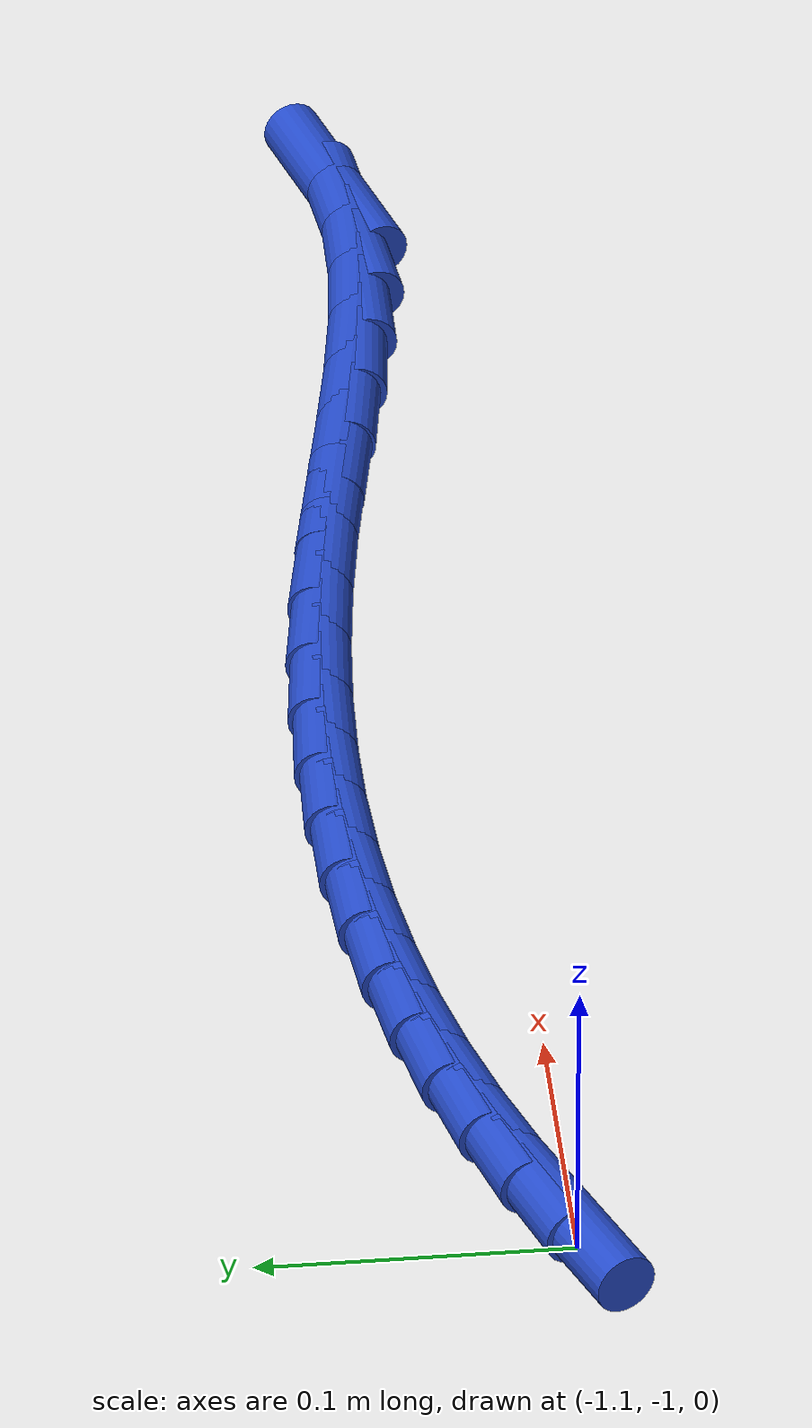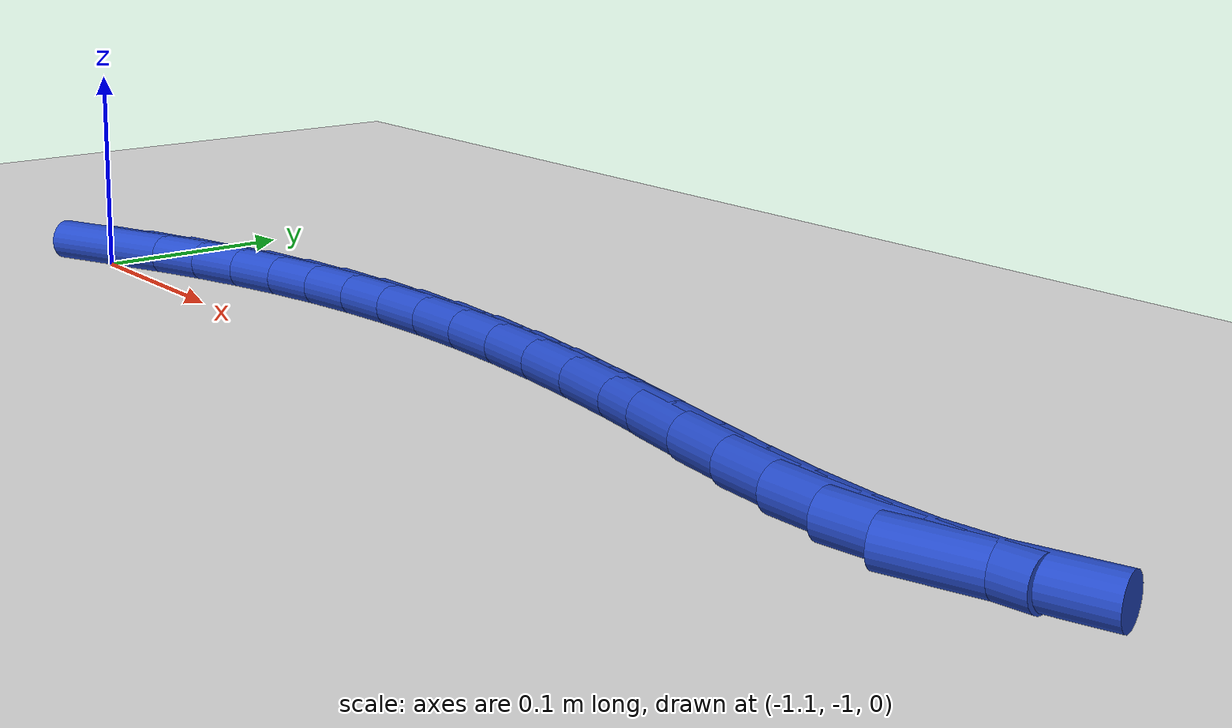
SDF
<sdf version="1.6">
 <world name="default">
  <model name="ground_plane">
   <static>1</static>
   <link name="link">
    <collision name="collision">
     <geometry><plane><normal>0 0 1</normal><size>100 100</size></plane></geometry>
     <surface><friction><ode><mu>100</mu><mu2>50</mu2></ode></friction></surface>
    </collision>
    <visual name="visual">
     <cast_shadows>0</cast_shadows>
     <geometry><plane><normal>0 0 1</normal><size>100 100</size></plane></geometry>
     <material>
      <script><uri>file://media/materials/scripts/gazebo.material</uri><name>Gazebo/WhiteGlow</name></script>
     </material>
    </visual>
   </link>
  </model>
  <model name="line">
   <link name="link_187">
    <pose>-1.0937528025233856 -0.9957720175721984 0.01 0 1.57 0.41378701808105184</pose>
    <collision name="collision">
     <geometry><cylinder><radius>0.01</radius><length>0.08</length></cylinder></geometry>
    </collision>
    <visual name="visual">
     <material>
      <script><name>Gazebo/Blue</name><uri>file://media/materials/scripts/gazebo.material</uri></script>
     </material>
     <geometry><cylinder><radius>0.01</radius><length>0.08</length></cylinder></geometry>
    </visual>
   </link>
   <link name="link_188">
    <pose>-1.0685561320614867 -0.984707125219084 0.01 0 1.57 0.3644209718391315</pose>
    <collision name="collision">
     <geometry><cylinder><radius>0.01</radius><length>0.08</length></cylinder></geometry>
    </collision>
    <visual name="visual">
     <material>
      <script><name>Gazebo/Blue</name><uri>file://media/materials/scripts/gazebo.material</uri></script>
     </material>
     <geometry><cylinder><radius>0.01</radius><length>0.08</length></cylinder></geometry>
    </visual>
   </link>
   <link name="link_189">
    <pose>-1.043203016008292 -0.9750359603308435 0.01 0 1.57 0.31395970144959207</pose>
    <collision name="collision">
     <geometry><cylinder><radius>0.01</radius><length>0.08</length></cylinder></geometry>
    </collision>
    <visual name="visual">
     <material>
      <script><name>Gazebo/Blue</name><uri>file://media/materials/scripts/gazebo.material</uri></script>
     </material>
     <geometry><cylinder><radius>0.01</radius><length>0.08</length></cylinder></geometry>
    </visual>
   </link>
   <link name="link_190">
    <pose>-1.017651222967959 -0.9667393166867566 0.01 0 1.57 0.2628913308552838</pose>
    <collision name="collision">
     <geometry><cylinder><radius>0.01</radius><length>0.08</length></cylinder></geometry>
    </collision>
    <visual name="visual">
     <material>
      <script><name>Gazebo/Blue</name><uri>file://media/materials/scripts/gazebo.material</uri></script>
     </material>
     <geometry><cylinder><radius>0.01</radius><length>0.08</length></cylinder></geometry>
    </visual>
   </link>
   <link name="link_191">
    <pose>-0.9918585215446478 -0.9597979880661045 0.01 0 1.57 0.21173635055647214</pose>
    <collision name="collision">
     <geometry><cylinder><radius>0.01</radius><length>0.08</length></cylinder></geometry>
    </collision>
    <visual name="visual">
     <material>
      <script><name>Gazebo/Blue</name><uri>file://media/materials/scripts/gazebo.material</uri></script>
     </material>
     <geometry><cylinder><radius>0.01</radius><length>0.08</length></cylinder></geometry>
    </visual>
   </link>
   <link name="link_192">
    <pose>-0.9657826803425159 -0.9541927682481668 0.01 0 1.57 0.16102253518012138</pose>
    <collision name="collision">
     <geometry><cylinder><radius>0.01</radius><length>0.08</length></cylinder></geometry>
    </collision>
    <visual name="visual">
     <material>
      <script><name>Gazebo/Blue</name><uri>file://media/materials/scripts/gazebo.material</uri></script>
     </material>
     <geometry><cylinder><radius>0.01</radius><length>0.08</length></cylinder></geometry>
    </visual>
   </link>
   <link name="link_193">
    <pose>-0.9393814679657222 -0.9499044510122239 0.01 0 1.57 0.11125897154835239</pose>
    <collision name="collision">
     <geometry><cylinder><radius>0.01</radius><length>0.08</length></cylinder></geometry>
    </collision>
    <visual name="visual">
     <material>
      <script><name>Gazebo/Blue</name><uri>file://media/materials/scripts/gazebo.material</uri></script>
     </material>
     <geometry><cylinder><radius>0.01</radius><length>0.08</length></cylinder></geometry>
    </visual>
   </link>
   <link name="link_194">
    <pose>-0.9126126530184252 -0.9469138301375563 0.01 0 1.57 0.06291229915309501</pose>
    <collision name="collision">
     <geometry><cylinder><radius>0.01</radius><length>0.08</length></cylinder></geometry>
    </collision>
    <visual name="visual">
     <material>
      <script><name>Gazebo/Blue</name><uri>file://media/materials/scripts/gazebo.material</uri></script>
     </material>
     <geometry><cylinder><radius>0.01</radius><length>0.08</length></cylinder></geometry>
    </visual>
   </link>
   <link name="link_195">
    <pose>-0.8854340041047837 -0.945201699403444 0.01 0 1.57 0.016387787526845617</pose>
    <collision name="collision">
     <geometry><cylinder><radius>0.01</radius><length>0.08</length></cylinder></geometry>
    </collision>
    <visual name="visual">
     <material>
      <script><name>Gazebo/Blue</name><uri>file://media/materials/scripts/gazebo.material</uri></script>
     </material>
     <geometry><cylinder><radius>0.01</radius><length>0.08</length></cylinder></geometry>
    </visual>
   </link>
   <link name="link_196">
    <pose>-0.857803289828956 -0.9447488525891675 0.01 0 1.57 -0.02798311408860146</pose>
    <collision name="collision">
     <geometry><cylinder><radius>0.01</radius><length>0.08</length></cylinder></geometry>
    </collision>
    <visual name="visual">
     <material>
      <script><name>Gazebo/Blue</name><uri>file://media/materials/scripts/gazebo.material</uri></script>
     </material>
     <geometry><cylinder><radius>0.01</radius><length>0.08</length></cylinder></geometry>
    </visual>
   </link>
   <link name="link_197">
    <pose>-0.8296782787951006 -0.9455360834740067 0.01 0 1.57 -0.06994831027522093</pose>
    <collision name="collision">
     <geometry><cylinder><radius>0.01</radius><length>0.08</length></cylinder></geometry>
    </collision>
    <visual name="visual">
     <material>
      <script><name>Gazebo/Blue</name><uri>file://media/materials/scripts/gazebo.material</uri></script>
     </material>
     <geometry><cylinder><radius>0.01</radius><length>0.08</length></cylinder></geometry>
    </visual>
   </link>
   <link name="link_198">
    <pose>-0.8010167396073764 -0.9475441858372424 0.01 0 1.57 -0.10933429932002807</pose>
    <collision name="collision">
     <geometry><cylinder><radius>0.01</radius><length>0.08</length></cylinder></geometry>
    </collision>
    <visual name="visual">
     <material>
      <script><name>Gazebo/Blue</name><uri>file://media/materials/scripts/gazebo.material</uri></script>
     </material>
     <geometry><cylinder><radius>0.01</radius><length>0.08</length></cylinder></geometry>
    </visual>
   </link>
   <link name="link_199">
    <pose>-0.7717764408699416 -0.9507539534581544 0.01 0 1.57 -0.14602780884439578</pose>
    <collision name="collision">
     <geometry><cylinder><radius>0.01</radius><length>0.08</length></cylinder></geometry>
    </collision>
    <visual name="visual">
     <material>
      <script><name>Gazebo/Blue</name><uri>file://media/materials/scripts/gazebo.material</uri></script>
     </material>
     <geometry><cylinder><radius>0.01</radius><length>0.08</length></cylinder></geometry>
    </visual>
   </link>
   <link name="link_200">
    <pose>-0.7419154550877602 -0.9551457493126111 0.01 0 1.57 -0.17514591953719563</pose>
    <collision name="collision">
     <geometry><cylinder><radius>0.01</radius><length>0.08</length></cylinder></geometry>
    </collision>
    <visual name="visual">
     <material>
      <script><name>Gazebo/Blue</name><uri>file://media/materials/scripts/gazebo.material</uri></script>
     </material>
     <geometry><cylinder><radius>0.01</radius><length>0.08</length></cylinder></geometry>
    </visual>
   </link>
   <link name="link_201">
    <pose>-0.7115149852671889 -0.9605253891579667 0.01 0 1.57 -0.18548007100747693</pose>
    <collision name="collision">
     <geometry><cylinder><radius>0.01</radius><length>0.08</length></cylinder></geometry>
    </collision>
    <visual name="visual">
     <material>
      <script><name>Gazebo/Blue</name><uri>file://media/materials/scripts/gazebo.material</uri></script>
     </material>
     <geometry><cylinder><radius>0.01</radius><length>0.08</length></cylinder></geometry>
    </visual>
   </link>
   <link name="link_202">
    <pose>-0.680967682591736 -0.9662571863422083 0.01 0 1.57 -0.17597860630167592</pose>
    <collision name="collision">
     <geometry><cylinder><radius>0.01</radius><length>0.08</length></cylinder></geometry>
    </collision>
    <visual name="visual">
     <material>
      <script><name>Gazebo/Blue</name><uri>file://media/materials/scripts/gazebo.material</uri></script>
     </material>
     <geometry><cylinder><radius>0.01</radius><length>0.08</length></cylinder></geometry>
    </visual>
   </link>
   <link name="link_203">
    <pose>-0.65071469049534 -0.9716367126152897 0.01 0 1.57 -0.14541572794283755</pose>
    <collision name="collision">
     <geometry><cylinder><radius>0.01</radius><length>0.08</length></cylinder></geometry>
    </collision>
    <visual name="visual">
     <material>
      <script><name>Gazebo/Blue</name><uri>file://media/materials/scripts/gazebo.material</uri></script>
     </material>
     <geometry><cylinder><radius>0.01</radius><length>0.08</length></cylinder></geometry>
    </visual>
   </link>
   <link name="link_204">
    <pose>-0.6211971524119406 -0.9759595397271665 0.01 0 1.57 -0.09014369981033797</pose>
    <collision name="collision">
     <geometry><cylinder><radius>0.01</radius><length>0.08</length></cylinder></geometry>
    </collision>
    <visual name="visual">
     <material>
      <script><name>Gazebo/Blue</name><uri>file://media/materials/scripts/gazebo.material</uri></script>
     </material>
     <geometry><cylinder><radius>0.01</radius><length>0.08</length></cylinder></geometry>
    </visual>
   </link>
   <link name="link_205">
    <pose>-0.5928562117754765 -0.9785212394277932 0.01 0 1.57 -0.0035977587034802935</pose>
    <collision name="collision">
     <geometry><cylinder><radius>0.01</radius><length>0.08</length></cylinder></geometry>
    </collision>
    <visual name="visual">
     <material>
      <script><name>Gazebo/Blue</name><uri>file://media/materials/scripts/gazebo.material</uri></script>
     </material>
     <geometry><cylinder><radius>0.01</radius><length>0.08</length></cylinder></geometry>
    </visual>
   </link>
   <link name="link_206">
    <pose>-0.566133012019887 -0.9786173834671243 0.01 0 1.57 0.12398772540925847</pose>
    <collision name="collision">
     <geometry><cylinder><radius>0.01</radius><length>0.08</length></cylinder></geometry>
    </collision>
    <visual name="visual">
     <material>
      <script><name>Gazebo/Blue</name><uri>file://media/materials/scripts/gazebo.material</uri></script>
     </material>
     <geometry><cylinder><radius>0.01</radius><length>0.08</length></cylinder></geometry>
    </visual>
   </link>
   <link name="link_207">
    <pose>-0.5414686965791111 -0.9755435435951149 0.01 0 1.57 0.3037852821269515</pose>
    <collision name="collision">
     <geometry><cylinder><radius>0.01</radius><length>0.08</length></cylinder></geometry>
    </collision>
    <visual name="visual">
     <material>
      <script><name>Gazebo/Blue</name><uri>file://media/materials/scripts/gazebo.material</uri></script>
     </material>
     <geometry><cylinder><radius>0.01</radius><length>0.08</length></cylinder></geometry>
    </visual>
   </link>
  </model>
 </world>
</sdf>
